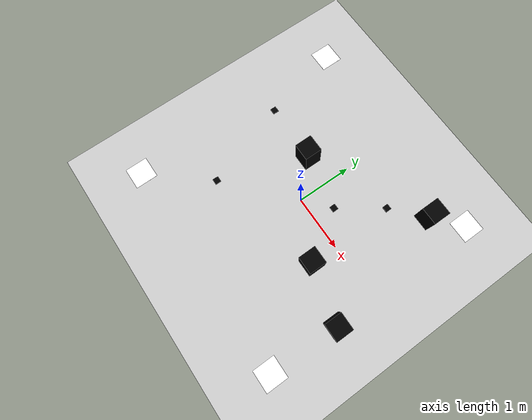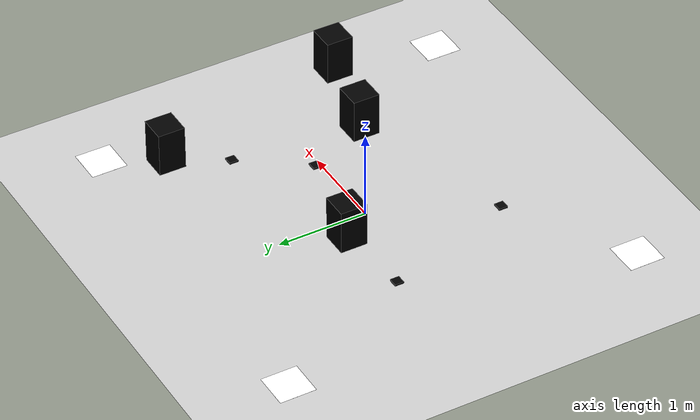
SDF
<?xml version="1.0" ?>
<sdf version="1.6">

  <world name="empty">

    <include>
      <name>tag0</name>
      <uri>src/robot_sim/urdf/world/markers/tag0/model.sdf</uri>
      <pose>2 2 0.1 0 0 1.5708</pose>
    </include>

    <include>
      <name>tag1</name>
      <uri>src/robot_sim/urdf/world/markers/tag1/model.sdf</uri>
      <pose>2 -2 0.1 0 0 0</pose>
    </include>

    <include>
      <name>tag2</name>
      <uri>src/robot_sim/urdf/world/markers/tag2/model.sdf</uri>
      <pose>-2 2 0.1 0 0 3.14159</pose>
    </include>

    <include>
      <name>tag3</name>
      <uri>src/robot_sim/urdf/world/markers/tag3/model.sdf</uri>
      <pose>-2 -2 0.1 0 0 -1.5708</pose>
    </include>

    <include>
      <name>rubble1</name>
      <uri>src/robot_sim/urdf/world/rubble/rubble.sdf</uri>
      <pose>-1 -1 0.2 0 0 0</pose>
    </include>

    <include>
      <name>rubble2</name>
      <uri>src/robot_sim/urdf/world/rubble/rubble.sdf</uri>
      <pose>1 1 0.2 0 0 0</pose>
    </include>
    <include>
      <name>rubble3</name>
      <uri>src/robot_sim/urdf/world/rubble/rubble.sdf</uri>
      <pose>-1.5 0.5 0.2 0 0 0</pose>
    </include>
    <include>
      <name>rubble4</name>
      <uri>src/robot_sim/urdf/world/rubble/rubble.sdf</uri>
      <pose>0.5 0.3 0.2 0 0 0</pose>
    </include>

    <include>
      <name>box1</name>
      <uri>src/robot_sim/urdf/world/boxes/box.sdf</uri>
      <pose>1 -0.5 0.02 0 0 0</pose>
    </include>

    <include>
      <name>box2</name>
      <uri>src/robot_sim/urdf/world/boxes/box.sdf</uri>
      <pose>2 -0.75 0.02 0 0 0</pose>
    </include>

    <include>
      <name>box3</name>
      <uri>src/robot_sim/urdf/world/boxes/box.sdf</uri>
      <pose>1.5 1.5 0.02 0 0 0</pose>
    </include>
    <include>
      <name>box4</name>
      <uri>src/robot_sim/urdf/world/boxes/box.sdf</uri>
      <pose>-0.5 0.5 0.02 0 0 0</pose>
    </include>

    <physics name="1ms" type="ignored">
      <max_step_size>0.001</max_step_size>
      <real_time_factor>1.0</real_time_factor>
    </physics>
    <plugin
      filename="gz-sim-physics-system"
      name="gz::sim::systems::Physics">
    </plugin>
    <plugin
      filename="gz-sim-user-commands-system"
      name="gz::sim::systems::UserCommands">
    </plugin>
    <plugin
      filename="gz-sim-scene-broadcaster-system"
      name="gz::sim::systems::SceneBroadcaster">
    </plugin>
    <plugin
      filename="gz-sim-contact-system"
      name="gz::sim::systems::Contact">
    </plugin>

    <light type="directional" name="sun0">
      <cast_shadows>false</cast_shadows>
      <pose>0 0 10 0 0 0</pose>
      <diffuse>0.8 0.8 0.8 1</diffuse>
      <specular>0.2 0.2 0.2 1</specular>
      <attenuation>
        <range>1000</range>
        <constant>0.9</constant>
        <linear>0.01</linear>
        <quadratic>0.001</quadratic>
      </attenuation>
      <direction>-0.5 0.1 -0.9</direction>
    </light>

    <model name="ground_plane">
      <static>true</static>
      <link name="link">
        <collision name="collision">
          <geometry>
            <plane>
              <normal>0 0 1</normal>
              <size>100 100</size>
            </plane>
          </geometry>
        </collision>
        <visual name="visual">
          <geometry>
            <plane>
              <normal>0 0 1</normal>
              <size>100 100</size>
            </plane>
          </geometry>
          <material>
            <ambient>0.8 0.8 0.8 1</ambient>
            <diffuse>0.8 0.8 0.8 1</diffuse>
            <specular>0.8 0.8 0.8 1</specular>
          </material>
        </visual>
      </link>
    </model>

  </world>
</sdf>

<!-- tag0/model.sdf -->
<sdf version="1.9">
  <model name="aruco_0">
    <static>true</static>
    <link name="aruco_0_link">
      <visual name="aruco_0_visual">
        <geometry>
          <plane>
            <normal>0 0 1</normal>
            <size>0.4 0.4</size>
          </plane>
          <mesh>
            <uri>model://apriltag.dae</uri>
          </mesh>
        </geometry>
        <material>
          <diffuse>1 1 1 1</diffuse>
          <specular>0 0 0 1</specular>
          <pbr>
            <metal>
              <metalness>0.0</metalness>
              <roughness>0.0</roughness>
              <albedo_map>materials/textures/tag25h9-0.png</albedo_map>
            </metal>
          </pbr>
        </material>
      </visual>
    </link>
  </model>
</sdf>

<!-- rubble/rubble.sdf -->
<sdf version='1.11'>
  <model name='wheeled_robot'>
    <link name='base_footprint_link'>
      <inertial>
        <pose>0 0 0.20999999999999999 0 0 0</pose>
        <mass>0.54359999999999997</mass>
        <inertia>
          <ixx>0.00047111999999999848</ixx>
          <ixy>0</ixy>
          <ixz>0</ixz>
          <iyy>0.00047111999999999848</iyy>
          <iyz>0</iyz>
          <izz>0.00090600000000000001</izz>
        </inertia>
      </inertial>
      <collision name='base_footprint_link_fixed_joint_lump__base_link_collision'>
        <pose>0 0 0.20999999999999999 0 0 0</pose>
        <geometry>
          <box>
            <size>0.10000000000000001 0.10000000000000001 0.02</size>
          </box>
        </geometry>
      </collision>
      <visual name='base_footprint_link_fixed_joint_lump__base_link_visual'>
        <pose>0 0 0.20999999999999999 0 0 0</pose>
        <geometry>
          <box>
            <size>0.10000000000000001 0.10000000000000001 0.02</size>
          </box>
        </geometry>
        <material>
          <diffuse>0 0 0 1</diffuse>
          <ambient>0 0 0 1</ambient>
        </material>
      </visual>
    </link>
    <plugin name='gz::sim::systems::JointStatePublisher' filename='gz-sim-joint-state-publisher-system'>
      <topic>joint_states</topic>
    </plugin>
    <frame name='base_footprint_base_joint' attached_to='base_footprint_link'>
      <pose>0 0 0.20000000000000001 0 0 0</pose>
    </frame>
    <frame name='base_link' attached_to='base_footprint_base_joint'>
      <pose>0 0 0 0 0 0</pose>
    </frame>
  </model>
</sdf>

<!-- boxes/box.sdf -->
<sdf version='1.11'>
  <model name='wheeled_robot'>
    <link name='base_footprint_link'>
      <inertial>
        <pose>0 0 0.45000000000000001 0 0 0</pose>
        <mass>122.31</mass>
        <inertia>
          <ixx>3.465449999999997</ixx>
          <ixy>0</ixy>
          <ixz>0</ixz>
          <iyy>3.465449999999997</iyy>
          <iyz>0</iyz>
          <izz>1.8346499999999999</izz>
        </inertia>
      </inertial>
      <collision name='base_footprint_link_fixed_joint_lump__base_link_collision'>
        <pose>0 0 0.45000000000000001 0 0 0</pose>
        <geometry>
          <box>
            <size>0.29999999999999999 0.29999999999999999 0.5</size>
          </box>
        </geometry>
      </collision>
      <visual name='base_footprint_link_fixed_joint_lump__base_link_visual'>
        <pose>0 0 0.45000000000000001 0 0 0</pose>
        <geometry>
          <box>
            <size>0.29999999999999999 0.29999999999999999 0.5</size>
          </box>
        </geometry>
        <material>
          <diffuse>0 0 0 1</diffuse>
          <ambient>0 0 0 1</ambient>
        </material>
      </visual>
    </link>
    <plugin name='gz::sim::systems::JointStatePublisher' filename='gz-sim-joint-state-publisher-system'>
      <topic>joint_states</topic>
    </plugin>
    <frame name='base_footprint_base_joint' attached_to='base_footprint_link'>
      <pose>0 0 0.20000000000000001 0 0 0</pose>
    </frame>
    <frame name='base_link' attached_to='base_footprint_base_joint'>
      <pose>0 0 0 0 0 0</pose>
    </frame>
  </model>
</sdf>
